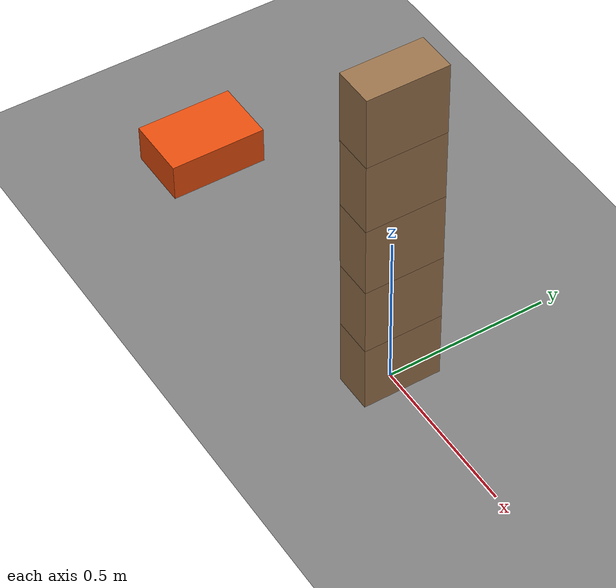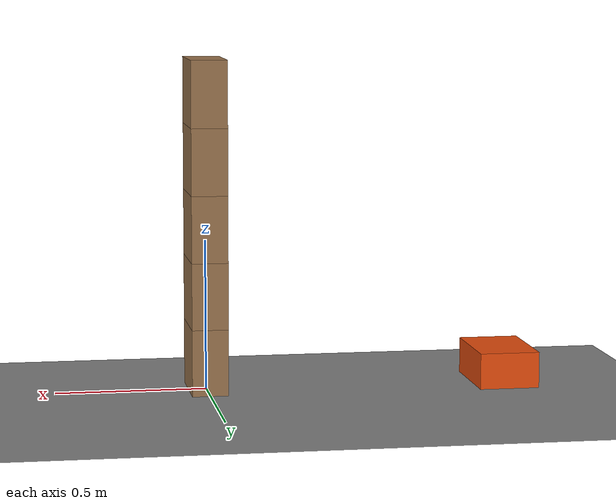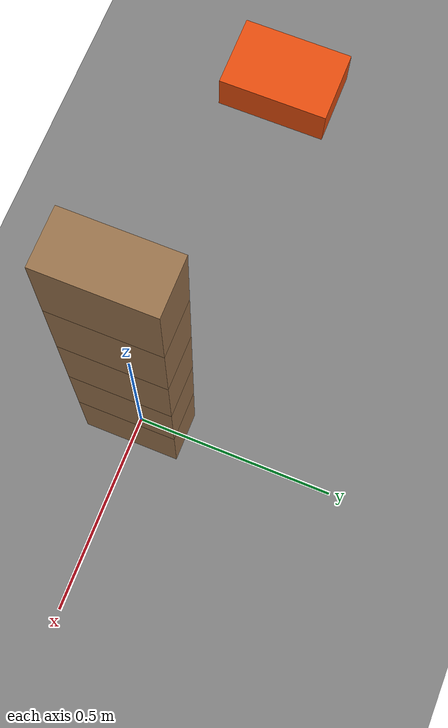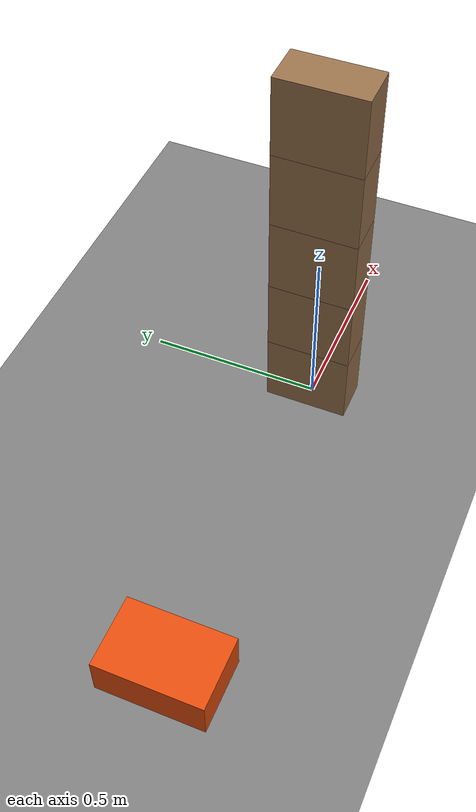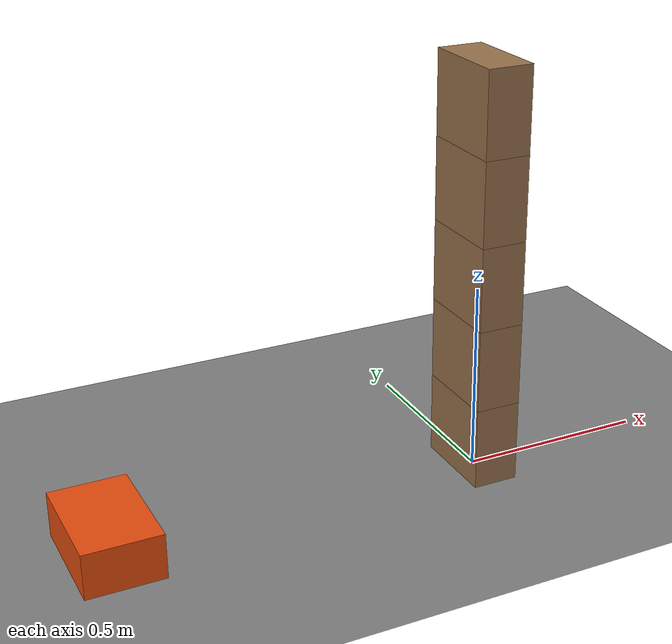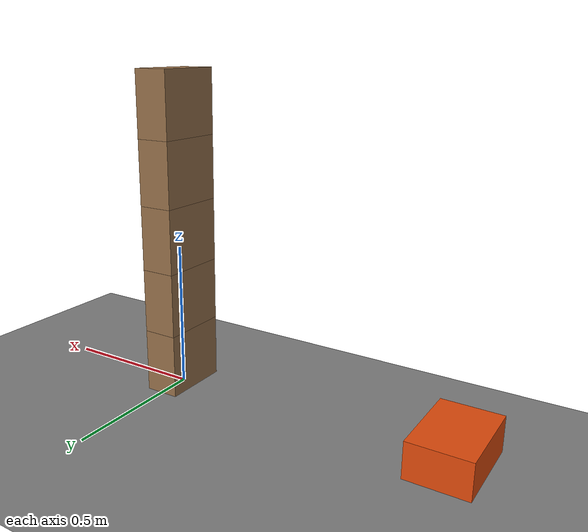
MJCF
<mujoco model="push_the_bottom_block">
  <compiler angle="radian"/>
  <option timestep="0.002"/>
  <worldbody>
    <geom name="floor" type="plane" size="6 6 0.1" friction="0.05 0.005 0.002"/>
    <body name="block1" pos="0 0 0.11">
      <freejoint/>
      <geom name="block1" type="box" pos="0 0 0" size="0.06 0.12 0.11" mass="0.5" friction="0.8 0.005 0.002" solref="0.01 1" rgba="0.6 0.45 0.3 1"/>
    </body>
    <body name="block2" pos="0 0 0.33">
      <freejoint/>
      <geom name="block2" type="box" pos="0 0 0" size="0.06 0.12 0.11" mass="0.5" friction="0.8 0.005 0.002" solref="0.01 1" rgba="0.6 0.45 0.3 1"/>
    </body>
    <body name="block3" pos="0 0 0.55">
      <freejoint/>
      <geom name="block3" type="box" pos="0 0 0" size="0.06 0.12 0.11" mass="0.5" friction="0.8 0.005 0.002" solref="0.01 1" rgba="0.6 0.45 0.3 1"/>
    </body>
    <body name="block4" pos="0 0 0.77">
      <freejoint/>
      <geom name="block4" type="box" pos="0 0 0" size="0.06 0.12 0.11" mass="0.5" friction="0.8 0.005 0.002" solref="0.01 1" rgba="0.6 0.45 0.3 1"/>
    </body>
    <body name="block5" pos="0 0 0.99">
      <freejoint/>
      <geom name="block5" type="box" pos="0 0 0" size="0.06 0.12 0.11" mass="0.5" friction="0.8 0.005 0.002" solref="0.01 1" rgba="0.6 0.45 0.3 1"/>
    </body>
    <body name="pusher" pos="-1 0 0.06">
      <freejoint/>
      <geom name="pusher" type="box" pos="0 0 0" size="0.1 0.15 0.06" mass="8" friction="0.05 0.005 0.002" solref="0.01 1" rgba="0.9 0.3 0.05 1"/>
    </body>
  </worldbody>
  <keyframe>
    <key name="start" qpos="0 0 0.11 1 0 0 0 0 0 0.33 1 0 0 0 0 0 0.55 1 0 0 0 0 0 0.77 1 0 0 0 0 0 0.99 1 0 0 0 -1 0 0.06 1 0 0 0" qvel="0 0 0 0 0 0 0 0 0 0 0 0 0 0 0 0 0 0 0 0 0 0 0 0 0 0 0 0 0 0 1.5 0 0 0 0 0"/>
  </keyframe>
</mujoco>
